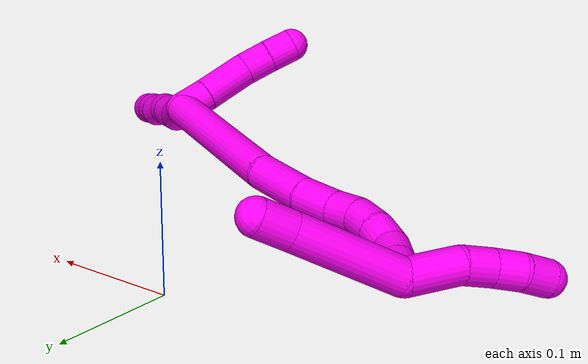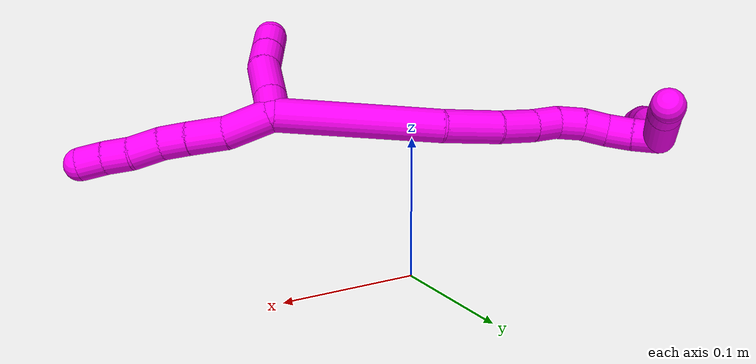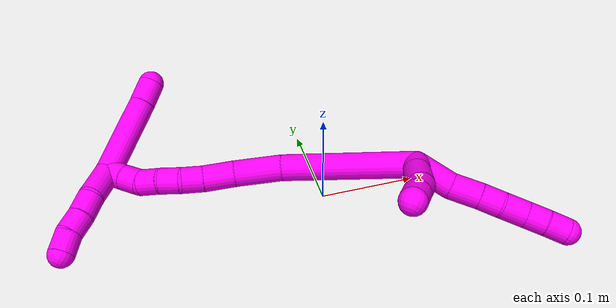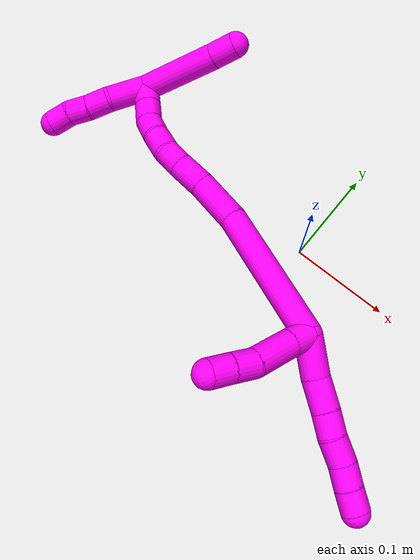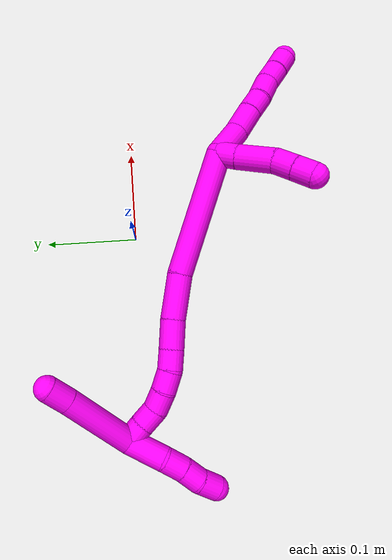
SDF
<sdf version="1.7">
 <world name="default">
  <model name="10">
   <static>0</static>
   <link name="10">
    <collision name="collision-cylinder-e_1_2_8">
     <pose>0.017792 -0.004015 -0.002664 2.15658 1.30632 1.91843</pose>
     <geometry><cylinder><radius>0.0125</radius><length>0.036866</length></cylinder></geometry>
     <surface>
      <friction><ode><mu>1.16</mu><mu2>1.16</mu2><slip1>0</slip1><slip2>0</slip2></ode></friction>
      <contact><ode><kp>1e+06</kp><kd>1</kd><max_vel>0</max_vel><min_depth>0.001</min_depth></ode></contact>
     </surface>
    </collision>
    <visual name="visual-cylinder-e_1_2_8">
     <pose>0.017792 -0.004015 -0.002664 2.15658 1.30632 1.91843</pose>
     <geometry><cylinder><radius>0.0125</radius><length>0.036866</length></cylinder></geometry>
     <material><ambient>1 0 0.964706 1</ambient></material>
    </visual>
    <collision name="collision-cylinder-e_2_8_9">
     <pose>0.048975 -0.013048 -0.004447 1.39712 1.20724 1.04972</pose>
     <geometry><cylinder><radius>0.0125</radius><length>0.028655</length></cylinder></geometry>
     <surface>
      <friction><ode><mu>1.16</mu><mu2>1.16</mu2><slip1>0</slip1><slip2>0</slip2></ode></friction>
      <contact><ode><kp>1e+06</kp><kd>1</kd><max_vel>0</max_vel><min_depth>0.001</min_depth></ode></contact>
     </surface>
    </collision>
    <visual name="visual-cylinder-e_2_8_9">
     <pose>0.048975 -0.013048 -0.004447 1.39712 1.20724 1.04972</pose>
     <geometry><cylinder><radius>0.0125</radius><length>0.028655</length></cylinder></geometry>
     <material><ambient>1 0 0.964706 1</ambient></material>
    </visual>
    <collision name="collision-cylinder-e_3_9_10">
     <pose>0.072035 -0.021725 -0.003499 1.55218 1.20904 1.19169</pose>
     <geometry><cylinder><radius>0.0125</radius><length>0.020675</length></cylinder></geometry>
     <surface>
      <friction><ode><mu>1.16</mu><mu2>1.16</mu2><slip1>0</slip1><slip2>0</slip2></ode></friction>
      <contact><ode><kp>1e+06</kp><kd>1</kd><max_vel>0</max_vel><min_depth>0.001</min_depth></ode></contact>
     </surface>
    </collision>
    <visual name="visual-cylinder-e_3_9_10">
     <pose>0.072035 -0.021725 -0.003499 1.55218 1.20904 1.19169</pose>
     <geometry><cylinder><radius>0.0125</radius><length>0.020675</length></cylinder></geometry>
     <material><ambient>1 0 0.964706 1</ambient></material>
    </visual>
    <collision name="collision-cylinder-e_4_10_11">
     <pose>0.093339 -0.027484 -0.002936 1.33948 1.38732 1.16454</pose>
     <geometry><cylinder><radius>0.0125</radius><length>0.02367</length></cylinder></geometry>
     <surface>
      <friction><ode><mu>1.16</mu><mu2>1.16</mu2><slip1>0</slip1><slip2>0</slip2></ode></friction>
      <contact><ode><kp>1e+06</kp><kd>1</kd><max_vel>0</max_vel><min_depth>0.001</min_depth></ode></contact>
     </surface>
    </collision>
    <visual name="visual-cylinder-e_4_10_11">
     <pose>0.093339 -0.027484 -0.002936 1.33948 1.38732 1.16454</pose>
     <geometry><cylinder><radius>0.0125</radius><length>0.02367</length></cylinder></geometry>
     <material><ambient>1 0 0.964706 1</ambient></material>
    </visual>
    <collision name="collision-cylinder-e_5_11_12">
     <pose>0.114334 -0.033176 -0.00228 1.52602 1.20413 1.16266</pose>
     <geometry><cylinder><radius>0.0125</radius><length>0.020049</length></cylinder></geometry>
     <surface>
      <friction><ode><mu>1.16</mu><mu2>1.16</mu2><slip1>0</slip1><slip2>0</slip2></ode></friction>
      <contact><ode><kp>1e+06</kp><kd>1</kd><max_vel>0</max_vel><min_depth>0.001</min_depth></ode></contact>
     </surface>
    </collision>
    <visual name="visual-cylinder-e_5_11_12">
     <pose>0.114334 -0.033176 -0.00228 1.52602 1.20413 1.16266</pose>
     <geometry><cylinder><radius>0.0125</radius><length>0.020049</length></cylinder></geometry>
     <material><ambient>1 0 0.964706 1</ambient></material>
    </visual>
    <collision name="collision-cylinder-e_6_12_6">
     <pose>0.13333 -0.039589 -0.002082 1.55785 1.2859 1.27349</pose>
     <geometry><cylinder><radius>0.0125</radius><length>0.020085</length></cylinder></geometry>
     <surface>
      <friction><ode><mu>1.16</mu><mu2>1.16</mu2><slip1>0</slip1><slip2>0</slip2></ode></friction>
      <contact><ode><kp>1e+06</kp><kd>1</kd><max_vel>0</max_vel><min_depth>0.001</min_depth></ode></contact>
     </surface>
    </collision>
    <visual name="visual-cylinder-e_6_12_6">
     <pose>0.13333 -0.039589 -0.002082 1.55785 1.2859 1.27349</pose>
     <geometry><cylinder><radius>0.0125</radius><length>0.020085</length></cylinder></geometry>
     <material><ambient>1 0 0.964706 1</ambient></material>
    </visual>
    <collision name="collision-cylinder-e_1_2_13">
     <pose>-0.001602 -0.009185 -0.004277 2.00658 -0.156828 -0.24529</pose>
     <geometry><cylinder><radius>0.0125</radius><length>0.020516</length></cylinder></geometry>
     <surface>
      <friction><ode><mu>1.16</mu><mu2>1.16</mu2><slip1>0</slip1><slip2>0</slip2></ode></friction>
      <contact><ode><kp>1e+06</kp><kd>1</kd><max_vel>0</max_vel><min_depth>0.001</min_depth></ode></contact>
     </surface>
    </collision>
    <visual name="visual-cylinder-e_1_2_13">
     <pose>-0.001602 -0.009185 -0.004277 2.00658 -0.156828 -0.24529</pose>
     <geometry><cylinder><radius>0.0125</radius><length>0.020516</length></cylinder></geometry>
     <material><ambient>1 0 0.964706 1</ambient></material>
    </visual>
    <collision name="collision-cylinder-e_2_13_14">
     <pose>-0.005461 -0.035795 -0.015806 1.96521 -0.118978 -0.178133</pose>
     <geometry><cylinder><radius>0.0125</radius><length>0.038016</length></cylinder></geometry>
     <surface>
      <friction><ode><mu>1.16</mu><mu2>1.16</mu2><slip1>0</slip1><slip2>0</slip2></ode></friction>
      <contact><ode><kp>1e+06</kp><kd>1</kd><max_vel>0</max_vel><min_depth>0.001</min_depth></ode></contact>
     </surface>
    </collision>
    <visual name="visual-cylinder-e_2_13_14">
     <pose>-0.005461 -0.035795 -0.015806 1.96521 -0.118978 -0.178133</pose>
     <geometry><cylinder><radius>0.0125</radius><length>0.038016</length></cylinder></geometry>
     <material><ambient>1 0 0.964706 1</ambient></material>
    </visual>
    <collision name="collision-cylinder-e_3_14_15">
     <pose>-0.011395 -0.062017 -0.02773 2.05886 -0.353747 -0.577888</pose>
     <geometry><cylinder><radius>0.0125</radius><length>0.021236</length></cylinder></geometry>
     <surface>
      <friction><ode><mu>1.16</mu><mu2>1.16</mu2><slip1>0</slip1><slip2>0</slip2></ode></friction>
      <contact><ode><kp>1e+06</kp><kd>1</kd><max_vel>0</max_vel><min_depth>0.001</min_depth></ode></contact>
     </surface>
    </collision>
    <visual name="visual-cylinder-e_3_14_15">
     <pose>-0.011395 -0.062017 -0.02773 2.05886 -0.353747 -0.577888</pose>
     <geometry><cylinder><radius>0.0125</radius><length>0.021236</length></cylinder></geometry>
     <material><ambient>1 0 0.964706 1</ambient></material>
    </visual>
    <collision name="collision-cylinder-e_4_15_5">
     <pose>-0.018369 -0.079122 -0.037138 2.08908 -0.3319 -0.561434</pose>
     <geometry><cylinder><radius>0.0125</radius><length>0.020232</length></cylinder></geometry>
     <surface>
      <friction><ode><mu>1.16</mu><mu2>1.16</mu2><slip1>0</slip1><slip2>0</slip2></ode></friction>
      <contact><ode><kp>1e+06</kp><kd>1</kd><max_vel>0</max_vel><min_depth>0.001</min_depth></ode></contact>
     </surface>
    </collision>
    <visual name="visual-cylinder-e_4_15_5">
     <pose>-0.018369 -0.079122 -0.037138 2.08908 -0.3319 -0.561434</pose>
     <geometry><cylinder><radius>0.0125</radius><length>0.020232</length></cylinder></geometry>
     <material><ambient>1 0 0.964706 1</ambient></material>
    </visual>
    <collision name="collision-cylinder-e_1_2_16">
     <pose>-0.051973 0.023656 -0.025251 -2.38881 -0.983431 1.87012</pose>
     <geometry><cylinder><radius>0.0125</radius><length>0.124874</length></cylinder></geometry>
     <surface>
      <friction><ode><mu>1.16</mu><mu2>1.16</mu2><slip1>0</slip1><slip2>0</slip2></ode></friction>
      <contact><ode><kp>1e+06</kp><kd>1</kd><max_vel>0</max_vel><min_depth>0.001</min_depth></ode></contact>
     </surface>
    </collision>
    <visual name="visual-cylinder-e_1_2_16">
     <pose>-0.051973 0.023656 -0.025251 -2.38881 -0.983431 1.87012</pose>
     <geometry><cylinder><radius>0.0125</radius><length>0.124874</length></cylinder></geometry>
     <material><ambient>1 0 0.964706 1</ambient></material>
    </visual>
    <collision name="collision-cylinder-e_2_16_17">
     <pose>-0.122301 0.053099 -0.061917 -2.67228 -0.961917 2.28242</pose>
     <geometry><cylinder><radius>0.0125</radius><length>0.044752</length></cylinder></geometry>
     <surface>
      <friction><ode><mu>1.16</mu><mu2>1.16</mu2><slip1>0</slip1><slip2>0</slip2></ode></friction>
      <contact><ode><kp>1e+06</kp><kd>1</kd><max_vel>0</max_vel><min_depth>0.001</min_depth></ode></contact>
     </surface>
    </collision>
    <visual name="visual-cylinder-e_2_16_17">
     <pose>-0.122301 0.053099 -0.061917 -2.67228 -0.961917 2.28242</pose>
     <geometry><cylinder><radius>0.0125</radius><length>0.044752</length></cylinder></geometry>
     <material><ambient>1 0 0.964706 1</ambient></material>
    </visual>
    <collision name="collision-cylinder-e_3_17_18">
     <pose>-0.152785 0.061244 -0.081458 -2.85938 -0.961645 2.60988</pose>
     <geometry><cylinder><radius>0.0125</radius><length>0.029579</length></cylinder></geometry>
     <surface>
      <friction><ode><mu>1.16</mu><mu2>1.16</mu2><slip1>0</slip1><slip2>0</slip2></ode></friction>
      <contact><ode><kp>1e+06</kp><kd>1</kd><max_vel>0</max_vel><min_depth>0.001</min_depth></ode></contact>
     </surface>
    </collision>
    <visual name="visual-cylinder-e_3_17_18">
     <pose>-0.152785 0.061244 -0.081458 -2.85938 -0.961645 2.60988</pose>
     <geometry><cylinder><radius>0.0125</radius><length>0.029579</length></cylinder></geometry>
     <material><ambient>1 0 0.964706 1</ambient></material>
    </visual>
    <collision name="collision-cylinder-e_4_18_19">
     <pose>-0.173769 0.064784 -0.094405 -2.90079 -1.06004 2.73435</pose>
     <geometry><cylinder><radius>0.0125</radius><length>0.020301</length></cylinder></geometry>
     <surface>
      <friction><ode><mu>1.16</mu><mu2>1.16</mu2><slip1>0</slip1><slip2>0</slip2></ode></friction>
      <contact><ode><kp>1e+06</kp><kd>1</kd><max_vel>0</max_vel><min_depth>0.001</min_depth></ode></contact>
     </surface>
    </collision>
    <visual name="visual-cylinder-e_4_18_19">
     <pose>-0.173769 0.064784 -0.094405 -2.90079 -1.06004 2.73435</pose>
     <geometry><cylinder><radius>0.0125</radius><length>0.020301</length></cylinder></geometry>
     <material><ambient>1 0 0.964706 1</ambient></material>
    </visual>
    <collision name="collision-cylinder-e_5_19_20">
     <pose>-0.191113 0.069814 -0.1034 -2.39727 -0.981188 1.87942</pose>
     <geometry><cylinder><radius>0.0125</radius><length>0.020426</length></cylinder></geometry>
     <surface>
      <friction><ode><mu>1.16</mu><mu2>1.16</mu2><slip1>0</slip1><slip2>0</slip2></ode></friction>
      <contact><ode><kp>1e+06</kp><kd>1</kd><max_vel>0</max_vel><min_depth>0.001</min_depth></ode></contact>
     </surface>
    </collision>
    <visual name="visual-cylinder-e_5_19_20">
     <pose>-0.191113 0.069814 -0.1034 -2.39727 -0.981188 1.87942</pose>
     <geometry><cylinder><radius>0.0125</radius><length>0.020426</length></cylinder></geometry>
     <material><ambient>1 0 0.964706 1</ambient></material>
    </visual>
    <collision name="collision-cylinder-e_6_20_21">
     <pose>-0.206965 0.078953 -0.11181 -2.24539 -0.826907 1.47957</pose>
     <geometry><cylinder><radius>0.0125</radius><length>0.020012</length></cylinder></geometry>
     <surface>
      <friction><ode><mu>1.16</mu><mu2>1.16</mu2><slip1>0</slip1><slip2>0</slip2></ode></friction>
      <contact><ode><kp>1e+06</kp><kd>1</kd><max_vel>0</max_vel><min_depth>0.001</min_depth></ode></contact>
     </surface>
    </collision>
    <visual name="visual-cylinder-e_6_20_21">
     <pose>-0.206965 0.078953 -0.11181 -2.24539 -0.826907 1.47957</pose>
     <geometry><cylinder><radius>0.0125</radius><length>0.020012</length></cylinder></geometry>
     <material><ambient>1 0 0.964706 1</ambient></material>
    </visual>
    <collision name="collision-cylinder-e_7_21_22">
     <pose>-0.221997 0.090605 -0.117016 -1.72283 -0.872739 0.995288</pose>
     <geometry><cylinder><radius>0.0125</radius><length>0.020021</length></cylinder></geometry>
     <surface>
      <friction><ode><mu>1.16</mu><mu2>1.16</mu2><slip1>0</slip1><slip2>0</slip2></ode></friction>
      <contact><ode><kp>1e+06</kp><kd>1</kd><max_vel>0</max_vel><min_depth>0.001</min_depth></ode></contact>
     </surface>
    </collision>
    <visual name="visual-cylinder-e_7_21_22">
     <pose>-0.221997 0.090605 -0.117016 -1.72283 -0.872739 0.995288</pose>
     <geometry><cylinder><radius>0.0125</radius><length>0.020021</length></cylinder></geometry>
     <material><ambient>1 0 0.964706 1</ambient></material>
    </visual>
    <collision name="collision-cylinder-e_8_22_1">
     <pose>-0.237809 0.102747 -0.118764 -1.70385 -0.949121 1.0617</pose>
     <geometry><cylinder><radius>0.0125</radius><length>0.020034</length></cylinder></geometry>
     <surface>
      <friction><ode><mu>1.16</mu><mu2>1.16</mu2><slip1>0</slip1><slip2>0</slip2></ode></friction>
      <contact><ode><kp>1e+06</kp><kd>1</kd><max_vel>0</max_vel><min_depth>0.001</min_depth></ode></contact>
     </surface>
    </collision>
    <visual name="visual-cylinder-e_8_22_1">
     <pose>-0.237809 0.102747 -0.118764 -1.70385 -0.949121 1.0617</pose>
     <geometry><cylinder><radius>0.0125</radius><length>0.020034</length></cylinder></geometry>
     <material><ambient>1 0 0.964706 1</ambient></material>
    </visual>
    <collision name="collision-cylinder-e_1_1_23">
     <pose>-0.244929 0.116943 -0.082095 -0.221047 0.026634 -0.002956</pose>
     <geometry><cylinder><radius>0.0125</radius><length>0.076782</length></cylinder></geometry>
     <surface>
      <friction><ode><mu>1.16</mu><mu2>1.16</mu2><slip1>0</slip1><slip2>0</slip2></ode></friction>
      <contact><ode><kp>1e+06</kp><kd>1</kd><max_vel>0</max_vel><min_depth>0.001</min_depth></ode></contact>
     </surface>
    </collision>
    <visual name="visual-cylinder-e_1_1_23">
     <pose>-0.244929 0.116943 -0.082095 -0.221047 0.026634 -0.002956</pose>
     <geometry><cylinder><radius>0.0125</radius><length>0.076782</length></cylinder></geometry>
     <material><ambient>1 0 0.964706 1</ambient></material>
    </visual>
    <collision name="collision-cylinder-e_2_23_4">
     <pose>-0.244025 0.128173 -0.033389 -0.244999 -0.010188 0.001254</pose>
     <geometry><cylinder><radius>0.0125</radius><length>0.023218</length></cylinder></geometry>
     <surface>
      <friction><ode><mu>1.16</mu><mu2>1.16</mu2><slip1>0</slip1><slip2>0</slip2></ode></friction>
      <contact><ode><kp>1e+06</kp><kd>1</kd><max_vel>0</max_vel><min_depth>0.001</min_depth></ode></contact>
     </surface>
    </collision>
    <visual name="visual-cylinder-e_2_23_4">
     <pose>-0.244025 0.128173 -0.033389 -0.244999 -0.010188 0.001254</pose>
     <geometry><cylinder><radius>0.0125</radius><length>0.023218</length></cylinder></geometry>
     <material><ambient>1 0 0.964706 1</ambient></material>
    </visual>
    <collision name="collision-cylinder-e_1_1_24">
     <pose>-0.248261 0.095338 -0.133176 2.37282 -0.121113 -0.297559</pose>
     <geometry><cylinder><radius>0.0125</radius><length>0.038227</length></cylinder></geometry>
     <surface>
      <friction><ode><mu>1.16</mu><mu2>1.16</mu2><slip1>0</slip1><slip2>0</slip2></ode></friction>
      <contact><ode><kp>1e+06</kp><kd>1</kd><max_vel>0</max_vel><min_depth>0.001</min_depth></ode></contact>
     </surface>
    </collision>
    <visual name="visual-cylinder-e_1_1_24">
     <pose>-0.248261 0.095338 -0.133176 2.37282 -0.121113 -0.297559</pose>
     <geometry><cylinder><radius>0.0125</radius><length>0.038227</length></cylinder></geometry>
     <material><ambient>1 0 0.964706 1</ambient></material>
    </visual>
    <collision name="collision-cylinder-e_2_24_25">
     <pose>-0.251071 0.076976 -0.156136 2.63523 -0.047017 -0.181255</pose>
     <geometry><cylinder><radius>0.0125</radius><length>0.021343</length></cylinder></geometry>
     <surface>
      <friction><ode><mu>1.16</mu><mu2>1.16</mu2><slip1>0</slip1><slip2>0</slip2></ode></friction>
      <contact><ode><kp>1e+06</kp><kd>1</kd><max_vel>0</max_vel><min_depth>0.001</min_depth></ode></contact>
     </surface>
    </collision>
    <visual name="visual-cylinder-e_2_24_25">
     <pose>-0.251071 0.076976 -0.156136 2.63523 -0.047017 -0.181255</pose>
     <geometry><cylinder><radius>0.0125</radius><length>0.021343</length></cylinder></geometry>
     <material><ambient>1 0 0.964706 1</ambient></material>
    </visual>
    <collision name="collision-cylinder-e_3_25_26">
     <pose>-0.253136 0.067629 -0.174438 2.70619 -0.156513 -0.681342</pose>
     <geometry><cylinder><radius>0.0125</radius><length>0.020053</length></cylinder></geometry>
     <surface>
      <friction><ode><mu>1.16</mu><mu2>1.16</mu2><slip1>0</slip1><slip2>0</slip2></ode></friction>
      <contact><ode><kp>1e+06</kp><kd>1</kd><max_vel>0</max_vel><min_depth>0.001</min_depth></ode></contact>
     </surface>
    </collision>
    <visual name="visual-cylinder-e_3_25_26">
     <pose>-0.253136 0.067629 -0.174438 2.70619 -0.156513 -0.681342</pose>
     <geometry><cylinder><radius>0.0125</radius><length>0.020053</length></cylinder></geometry>
     <material><ambient>1 0 0.964706 1</ambient></material>
    </visual>
    <collision name="collision-cylinder-e_4_26_3">
     <pose>-0.253886 0.059538 -0.192789 2.74596 0.079883 0.393593</pose>
     <geometry><cylinder><radius>0.0125</radius><length>0.020376</length></cylinder></geometry>
     <surface>
      <friction><ode><mu>1.16</mu><mu2>1.16</mu2><slip1>0</slip1><slip2>0</slip2></ode></friction>
      <contact><ode><kp>1e+06</kp><kd>1</kd><max_vel>0</max_vel><min_depth>0.001</min_depth></ode></contact>
     </surface>
    </collision>
    <visual name="visual-cylinder-e_4_26_3">
     <pose>-0.253886 0.059538 -0.192789 2.74596 0.079883 0.393593</pose>
     <geometry><cylinder><radius>0.0125</radius><length>0.020376</length></cylinder></geometry>
     <material><ambient>1 0 0.964706 1</ambient></material>
    </visual>
    <collision name="collision-sphere-3">
     <pose>-0.253073 0.055624 -0.20216 0 -0 0</pose>
     <geometry><sphere><radius>0.0125</radius></sphere></geometry>
     <surface>
      <friction><ode><mu>1.16</mu><mu2>1.16</mu2><slip1>0</slip1><slip2>0</slip2></ode></friction>
      <contact><ode><kp>1e+06</kp><kd>1</kd><max_vel>0</max_vel><min_depth>0.001</min_depth></ode></contact>
     </surface>
    </collision>
    <visual name="visual-sphere-3">
     <pose>-0.253073 0.055624 -0.20216 0 -0 0</pose>
     <geometry><sphere><radius>0.0125</radius></sphere></geometry>
     <material><ambient>1 0 0.964706 1</ambient></material>
    </visual>
    <collision name="collision-sphere-26">
     <pose>-0.254699 0.063451 -0.183418 0 -0 0</pose>
     <geometry><sphere><radius>0.0125</radius></sphere></geometry>
     <surface>
      <friction><ode><mu>1.16</mu><mu2>1.16</mu2><slip1>0</slip1><slip2>0</slip2></ode></friction>
      <contact><ode><kp>1e+06</kp><kd>1</kd><max_vel>0</max_vel><min_depth>0.001</min_depth></ode></contact>
     </surface>
    </collision>
    <visual name="visual-sphere-26">
     <pose>-0.254699 0.063451 -0.183418 0 -0 0</pose>
     <geometry><sphere><radius>0.0125</radius></sphere></geometry>
     <material><ambient>1 0 0.964706 1</ambient></material>
    </visual>
    <collision name="collision-sphere-25">
     <pose>-0.251573 0.071806 -0.165458 0 -0 0</pose>
     <geometry><sphere><radius>0.0125</radius></sphere></geometry>
     <surface>
      <friction><ode><mu>1.16</mu><mu2>1.16</mu2><slip1>0</slip1><slip2>0</slip2></ode></friction>
      <contact><ode><kp>1e+06</kp><kd>1</kd><max_vel>0</max_vel><min_depth>0.001</min_depth></ode></contact>
     </surface>
    </collision>
    <visual name="visual-sphere-25">
     <pose>-0.251573 0.071806 -0.165458 0 -0 0</pose>
     <geometry><sphere><radius>0.0125</radius></sphere></geometry>
     <material><ambient>1 0 0.964706 1</ambient></material>
    </visual>
    <collision name="collision-sphere-24">
     <pose>-0.25057 0.082146 -0.146813 0 -0 0</pose>
     <geometry><sphere><radius>0.0125</radius></sphere></geometry>
     <surface>
      <friction><ode><mu>1.16</mu><mu2>1.16</mu2><slip1>0</slip1><slip2>0</slip2></ode></friction>
      <contact><ode><kp>1e+06</kp><kd>1</kd><max_vel>0</max_vel><min_depth>0.001</min_depth></ode></contact>
     </surface>
    </collision>
    <visual name="visual-sphere-24">
     <pose>-0.25057 0.082146 -0.146813 0 -0 0</pose>
     <geometry><sphere><radius>0.0125</radius></sphere></geometry>
     <material><ambient>1 0 0.964706 1</ambient></material>
    </visual>
    <collision name="collision-sphere-4">
     <pose>-0.244143 0.130989 -0.022128 0 -0 0</pose>
     <geometry><sphere><radius>0.0125</radius></sphere></geometry>
     <surface>
      <friction><ode><mu>1.16</mu><mu2>1.16</mu2><slip1>0</slip1><slip2>0</slip2></ode></friction>
      <contact><ode><kp>1e+06</kp><kd>1</kd><max_vel>0</max_vel><min_depth>0.001</min_depth></ode></contact>
     </surface>
    </collision>
    <visual name="visual-sphere-4">
     <pose>-0.244143 0.130989 -0.022128 0 -0 0</pose>
     <geometry><sphere><radius>0.0125</radius></sphere></geometry>
     <material><ambient>1 0 0.964706 1</ambient></material>
    </visual>
    <collision name="collision-sphere-23">
     <pose>-0.243907 0.125358 -0.044651 0 -0 0</pose>
     <geometry><sphere><radius>0.0125</radius></sphere></geometry>
     <surface>
      <friction><ode><mu>1.16</mu><mu2>1.16</mu2><slip1>0</slip1><slip2>0</slip2></ode></friction>
      <contact><ode><kp>1e+06</kp><kd>1</kd><max_vel>0</max_vel><min_depth>0.001</min_depth></ode></contact>
     </surface>
    </collision>
    <visual name="visual-sphere-23">
     <pose>-0.243907 0.125358 -0.044651 0 -0 0</pose>
     <geometry><sphere><radius>0.0125</radius></sphere></geometry>
     <material><ambient>1 0 0.964706 1</ambient></material>
    </visual>
    <collision name="collision-sphere-1">
     <pose>-0.245951 0.108529 -0.119538 0 -0 0</pose>
     <geometry><sphere><radius>0.0125</radius></sphere></geometry>
     <surface>
      <friction><ode><mu>1.16</mu><mu2>1.16</mu2><slip1>0</slip1><slip2>0</slip2></ode></friction>
      <contact><ode><kp>1e+06</kp><kd>1</kd><max_vel>0</max_vel><min_depth>0.001</min_depth></ode></contact>
     </surface>
    </collision>
    <visual name="visual-sphere-1">
     <pose>-0.245951 0.108529 -0.119538 0 -0 0</pose>
     <geometry><sphere><radius>0.0125</radius></sphere></geometry>
     <material><ambient>1 0 0.964706 1</ambient></material>
    </visual>
    <collision name="collision-sphere-22">
     <pose>-0.229666 0.096965 -0.11799 0 -0 0</pose>
     <geometry><sphere><radius>0.0125</radius></sphere></geometry>
     <surface>
      <friction><ode><mu>1.16</mu><mu2>1.16</mu2><slip1>0</slip1><slip2>0</slip2></ode></friction>
      <contact><ode><kp>1e+06</kp><kd>1</kd><max_vel>0</max_vel><min_depth>0.001</min_depth></ode></contact>
     </surface>
    </collision>
    <visual name="visual-sphere-22">
     <pose>-0.229666 0.096965 -0.11799 0 -0 0</pose>
     <geometry><sphere><radius>0.0125</radius></sphere></geometry>
     <material><ambient>1 0 0.964706 1</ambient></material>
    </visual>
    <collision name="collision-sphere-21">
     <pose>-0.214327 0.084245 -0.116041 0 -0 0</pose>
     <geometry><sphere><radius>0.0125</radius></sphere></geometry>
     <surface>
      <friction><ode><mu>1.16</mu><mu2>1.16</mu2><slip1>0</slip1><slip2>0</slip2></ode></friction>
      <contact><ode><kp>1e+06</kp><kd>1</kd><max_vel>0</max_vel><min_depth>0.001</min_depth></ode></contact>
     </surface>
    </collision>
    <visual name="visual-sphere-21">
     <pose>-0.214327 0.084245 -0.116041 0 -0 0</pose>
     <geometry><sphere><radius>0.0125</radius></sphere></geometry>
     <material><ambient>1 0 0.964706 1</ambient></material>
    </visual>
    <collision name="collision-sphere-12">
     <pose>0.123692 -0.036766 -0.002119 0 -0 0</pose>
     <geometry><sphere><radius>0.0125</radius></sphere></geometry>
     <surface>
      <friction><ode><mu>1.16</mu><mu2>1.16</mu2><slip1>0</slip1><slip2>0</slip2></ode></friction>
      <contact><ode><kp>1e+06</kp><kd>1</kd><max_vel>0</max_vel><min_depth>0.001</min_depth></ode></contact>
     </surface>
    </collision>
    <visual name="visual-sphere-12">
     <pose>0.123692 -0.036766 -0.002119 0 -0 0</pose>
     <geometry><sphere><radius>0.0125</radius></sphere></geometry>
     <material><ambient>1 0 0.964706 1</ambient></material>
    </visual>
    <collision name="collision-sphere-11">
     <pose>0.104976 -0.029586 -0.002441 0 -0 0</pose>
     <geometry><sphere><radius>0.0125</radius></sphere></geometry>
     <surface>
      <friction><ode><mu>1.16</mu><mu2>1.16</mu2><slip1>0</slip1><slip2>0</slip2></ode></friction>
      <contact><ode><kp>1e+06</kp><kd>1</kd><max_vel>0</max_vel><min_depth>0.001</min_depth></ode></contact>
     </surface>
    </collision>
    <visual name="visual-sphere-11">
     <pose>0.104976 -0.029586 -0.002441 0 -0 0</pose>
     <geometry><sphere><radius>0.0125</radius></sphere></geometry>
     <material><ambient>1 0 0.964706 1</ambient></material>
    </visual>
    <collision name="collision-sphere-10">
     <pose>0.081703 -0.025383 -0.003431 0 -0 0</pose>
     <geometry><sphere><radius>0.0125</radius></sphere></geometry>
     <surface>
      <friction><ode><mu>1.16</mu><mu2>1.16</mu2><slip1>0</slip1><slip2>0</slip2></ode></friction>
      <contact><ode><kp>1e+06</kp><kd>1</kd><max_vel>0</max_vel><min_depth>0.001</min_depth></ode></contact>
     </surface>
    </collision>
    <visual name="visual-sphere-10">
     <pose>0.081703 -0.025383 -0.003431 0 -0 0</pose>
     <geometry><sphere><radius>0.0125</radius></sphere></geometry>
     <material><ambient>1 0 0.964706 1</ambient></material>
    </visual>
    <collision name="collision-sphere-9">
     <pose>0.062366 -0.018067 -0.003567 0 -0 0</pose>
     <geometry><sphere><radius>0.0125</radius></sphere></geometry>
     <surface>
      <friction><ode><mu>1.16</mu><mu2>1.16</mu2><slip1>0</slip1><slip2>0</slip2></ode></friction>
      <contact><ode><kp>1e+06</kp><kd>1</kd><max_vel>0</max_vel><min_depth>0.001</min_depth></ode></contact>
     </surface>
    </collision>
    <visual name="visual-sphere-9">
     <pose>0.062366 -0.018067 -0.003567 0 -0 0</pose>
     <geometry><sphere><radius>0.0125</radius></sphere></geometry>
     <material><ambient>1 0 0.964706 1</ambient></material>
    </visual>
    <collision name="collision-sphere-2">
     <geometry><sphere><radius>0.0125</radius></sphere></geometry>
     <surface>
      <friction><ode><mu>1.16</mu><mu2>1.16</mu2><slip1>0</slip1><slip2>0</slip2></ode></friction>
      <contact><ode><kp>1e+06</kp><kd>1</kd><max_vel>0</max_vel><min_depth>0.001</min_depth></ode></contact>
     </surface>
    </collision>
    <visual name="visual-sphere-2">
     <geometry><sphere><radius>0.0125</radius></sphere></geometry>
     <material><ambient>1 0 0.964706 1</ambient></material>
    </visual>
    <collision name="collision-sphere-19">
     <pose>-0.182624 0.065967 -0.099223 0 -0 0</pose>
     <geometry><sphere><radius>0.0125</radius></sphere></geometry>
     <surface>
      <friction><ode><mu>1.16</mu><mu2>1.16</mu2><slip1>0</slip1><slip2>0</slip2></ode></friction>
      <contact><ode><kp>1e+06</kp><kd>1</kd><max_vel>0</max_vel><min_depth>0.001</min_depth></ode></contact>
     </surface>
    </collision>
    <visual name="visual-sphere-19">
     <pose>-0.182624 0.065967 -0.099223 0 -0 0</pose>
     <geometry><sphere><radius>0.0125</radius></sphere></geometry>
     <material><ambient>1 0 0.964706 1</ambient></material>
    </visual>
    <collision name="collision-sphere-8">
     <pose>0.035584 -0.00803 -0.005328 0 -0 0</pose>
     <geometry><sphere><radius>0.0125</radius></sphere></geometry>
     <surface>
      <friction><ode><mu>1.16</mu><mu2>1.16</mu2><slip1>0</slip1><slip2>0</slip2></ode></friction>
      <contact><ode><kp>1e+06</kp><kd>1</kd><max_vel>0</max_vel><min_depth>0.001</min_depth></ode></contact>
     </surface>
    </collision>
    <visual name="visual-sphere-8">
     <pose>0.035584 -0.00803 -0.005328 0 -0 0</pose>
     <geometry><sphere><radius>0.0125</radius></sphere></geometry>
     <material><ambient>1 0 0.964706 1</ambient></material>
    </visual>
    <collision name="collision-sphere-6">
     <pose>0.142967 -0.042411 -0.002046 0 -0 0</pose>
     <geometry><sphere><radius>0.0125</radius></sphere></geometry>
     <surface>
      <friction><ode><mu>1.16</mu><mu2>1.16</mu2><slip1>0</slip1><slip2>0</slip2></ode></friction>
      <contact><ode><kp>1e+06</kp><kd>1</kd><max_vel>0</max_vel><min_depth>0.001</min_depth></ode></contact>
     </surface>
    </collision>
    <visual name="visual-sphere-6">
     <pose>0.142967 -0.042411 -0.002046 0 -0 0</pose>
     <geometry><sphere><radius>0.0125</radius></sphere></geometry>
     <material><ambient>1 0 0.964706 1</ambient></material>
    </visual>
    <collision name="collision-sphere-13">
     <pose>-0.003204 -0.01837 -0.008554 0 -0 0</pose>
     <geometry><sphere><radius>0.0125</radius></sphere></geometry>
     <surface>
      <friction><ode><mu>1.16</mu><mu2>1.16</mu2><slip1>0</slip1><slip2>0</slip2></ode></friction>
      <contact><ode><kp>1e+06</kp><kd>1</kd><max_vel>0</max_vel><min_depth>0.001</min_depth></ode></contact>
     </surface>
    </collision>
    <visual name="visual-sphere-13">
     <pose>-0.003204 -0.01837 -0.008554 0 -0 0</pose>
     <geometry><sphere><radius>0.0125</radius></sphere></geometry>
     <material><ambient>1 0 0.964706 1</ambient></material>
    </visual>
    <collision name="collision-sphere-14">
     <pose>-0.007717 -0.053219 -0.023059 0 -0 0</pose>
     <geometry><sphere><radius>0.0125</radius></sphere></geometry>
     <surface>
      <friction><ode><mu>1.16</mu><mu2>1.16</mu2><slip1>0</slip1><slip2>0</slip2></ode></friction>
      <contact><ode><kp>1e+06</kp><kd>1</kd><max_vel>0</max_vel><min_depth>0.001</min_depth></ode></contact>
     </surface>
    </collision>
    <visual name="visual-sphere-14">
     <pose>-0.007717 -0.053219 -0.023059 0 -0 0</pose>
     <geometry><sphere><radius>0.0125</radius></sphere></geometry>
     <material><ambient>1 0 0.964706 1</ambient></material>
    </visual>
    <collision name="collision-sphere-15">
     <pose>-0.015073 -0.070815 -0.0324 0 -0 0</pose>
     <geometry><sphere><radius>0.0125</radius></sphere></geometry>
     <surface>
      <friction><ode><mu>1.16</mu><mu2>1.16</mu2><slip1>0</slip1><slip2>0</slip2></ode></friction>
      <contact><ode><kp>1e+06</kp><kd>1</kd><max_vel>0</max_vel><min_depth>0.001</min_depth></ode></contact>
     </surface>
    </collision>
    <visual name="visual-sphere-15">
     <pose>-0.015073 -0.070815 -0.0324 0 -0 0</pose>
     <geometry><sphere><radius>0.0125</radius></sphere></geometry>
     <material><ambient>1 0 0.964706 1</ambient></material>
    </visual>
    <collision name="collision-sphere-5">
     <pose>-0.021666 -0.08743 -0.041876 0 -0 0</pose>
     <geometry><sphere><radius>0.0125</radius></sphere></geometry>
     <surface>
      <friction><ode><mu>1.16</mu><mu2>1.16</mu2><slip1>0</slip1><slip2>0</slip2></ode></friction>
      <contact><ode><kp>1e+06</kp><kd>1</kd><max_vel>0</max_vel><min_depth>0.001</min_depth></ode></contact>
     </surface>
    </collision>
    <visual name="visual-sphere-5">
     <pose>-0.021666 -0.08743 -0.041876 0 -0 0</pose>
     <geometry><sphere><radius>0.0125</radius></sphere></geometry>
     <material><ambient>1 0 0.964706 1</ambient></material>
    </visual>
    <collision name="collision-sphere-16">
     <pose>-0.103946 0.047311 -0.050503 0 -0 0</pose>
     <geometry><sphere><radius>0.0125</radius></sphere></geometry>
     <surface>
      <friction><ode><mu>1.16</mu><mu2>1.16</mu2><slip1>0</slip1><slip2>0</slip2></ode></friction>
      <contact><ode><kp>1e+06</kp><kd>1</kd><max_vel>0</max_vel><min_depth>0.001</min_depth></ode></contact>
     </surface>
    </collision>
    <visual name="visual-sphere-16">
     <pose>-0.103946 0.047311 -0.050503 0 -0 0</pose>
     <geometry><sphere><radius>0.0125</radius></sphere></geometry>
     <material><ambient>1 0 0.964706 1</ambient></material>
    </visual>
    <collision name="collision-sphere-17">
     <pose>-0.140655 0.058888 -0.073331 0 -0 0</pose>
     <geometry><sphere><radius>0.0125</radius></sphere></geometry>
     <surface>
      <friction><ode><mu>1.16</mu><mu2>1.16</mu2><slip1>0</slip1><slip2>0</slip2></ode></friction>
      <contact><ode><kp>1e+06</kp><kd>1</kd><max_vel>0</max_vel><min_depth>0.001</min_depth></ode></contact>
     </surface>
    </collision>
    <visual name="visual-sphere-17">
     <pose>-0.140655 0.058888 -0.073331 0 -0 0</pose>
     <geometry><sphere><radius>0.0125</radius></sphere></geometry>
     <material><ambient>1 0 0.964706 1</ambient></material>
    </visual>
    <collision name="collision-sphere-18">
     <pose>-0.164914 0.063601 -0.089586 0 -0 0</pose>
     <geometry><sphere><radius>0.0125</radius></sphere></geometry>
     <surface>
      <friction><ode><mu>1.16</mu><mu2>1.16</mu2><slip1>0</slip1><slip2>0</slip2></ode></friction>
      <contact><ode><kp>1e+06</kp><kd>1</kd><max_vel>0</max_vel><min_depth>0.001</min_depth></ode></contact>
     </surface>
    </collision>
    <visual name="visual-sphere-18">
     <pose>-0.164914 0.063601 -0.089586 0 -0 0</pose>
     <geometry><sphere><radius>0.0125</radius></sphere></geometry>
     <material><ambient>1 0 0.964706 1</ambient></material>
    </visual>
    <collision name="collision-sphere-20">
     <pose>-0.199602 0.073662 -0.107578 0 -0 0</pose>
     <geometry><sphere><radius>0.0125</radius></sphere></geometry>
     <surface>
      <friction><ode><mu>1.16</mu><mu2>1.16</mu2><slip1>0</slip1><slip2>0</slip2></ode></friction>
      <contact><ode><kp>1e+06</kp><kd>1</kd><max_vel>0</max_vel><min_depth>0.001</min_depth></ode></contact>
     </surface>
    </collision>
    <visual name="visual-sphere-20">
     <pose>-0.199602 0.073662 -0.107578 0 -0 0</pose>
     <geometry><sphere><radius>0.0125</radius></sphere></geometry>
     <material><ambient>1 0 0.964706 1</ambient></material>
    </visual>
    <inertial>
     <pose>-0.102614 0.036798 -0.059646 0 -0 0</pose>
     <mass>0.75</mass>
     <inertia>
      <ixx>0.000116</ixx>
      <ixy>0</ixy>
      <ixz>0</ixz>
      <iyy>0.000279</iyy>
      <iyz>0</iyz>
      <izz>7.2e-05</izz>
     </inertia>
    </inertial>
   </link>
   <pose>0.061693 -0.090345 0.105308 -0.795729 0.47949 -0.39844</pose>
  </model>
 </world>
</sdf>
